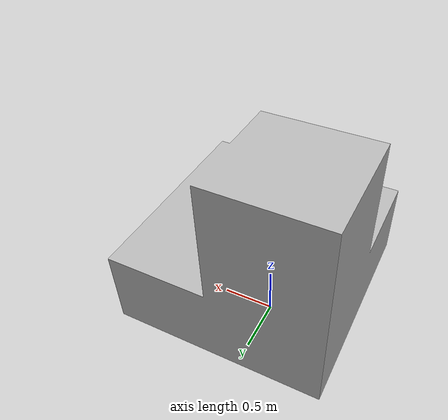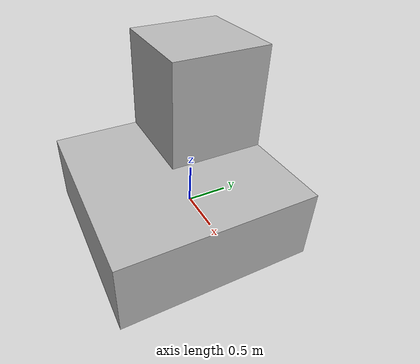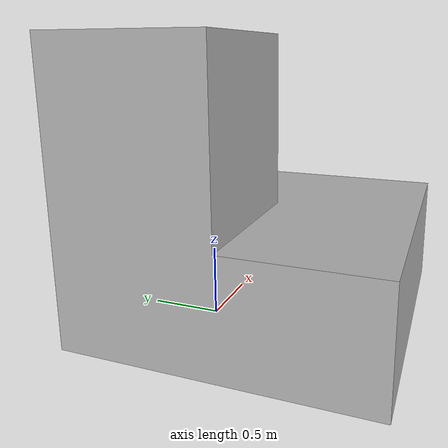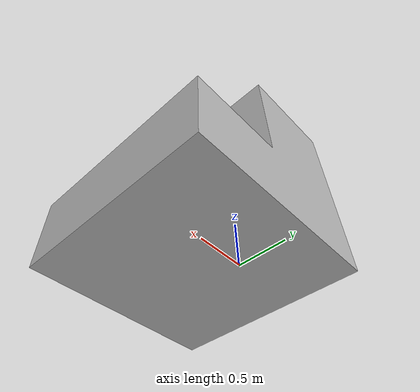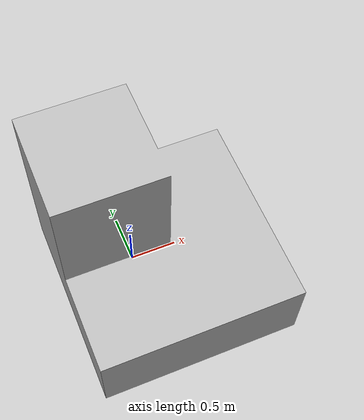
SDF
<?xml version="1.0" ?>
<sdf version="1.5">
  <model name='obs06'>
    <static>true</static>
    <link name="link">
      <collision name='collision'>
        <geometry>
          <mesh>
            <uri>model://obs06/mesh/Obs06.stl</uri>
            <scale>0.01 0.01 0.01</scale>
          </mesh>
        </geometry>
      </collision>

      <visual name='visual'>
        <geometry>
          <mesh>
            <uri>model://obs06/mesh/Obs06.stl</uri>
            <scale>0.01 0.01 0.01</scale>
          </mesh>
        </geometry>
        <material>
          <script>
            <uri>model://obs06/materials/scripts</uri>
            <uri>model://obs06/materials/textures</uri>
            <name>buildMat/Tex6</name>
          </script>
        </material>
      </visual>
    </link>
  </model>
</sdf>
